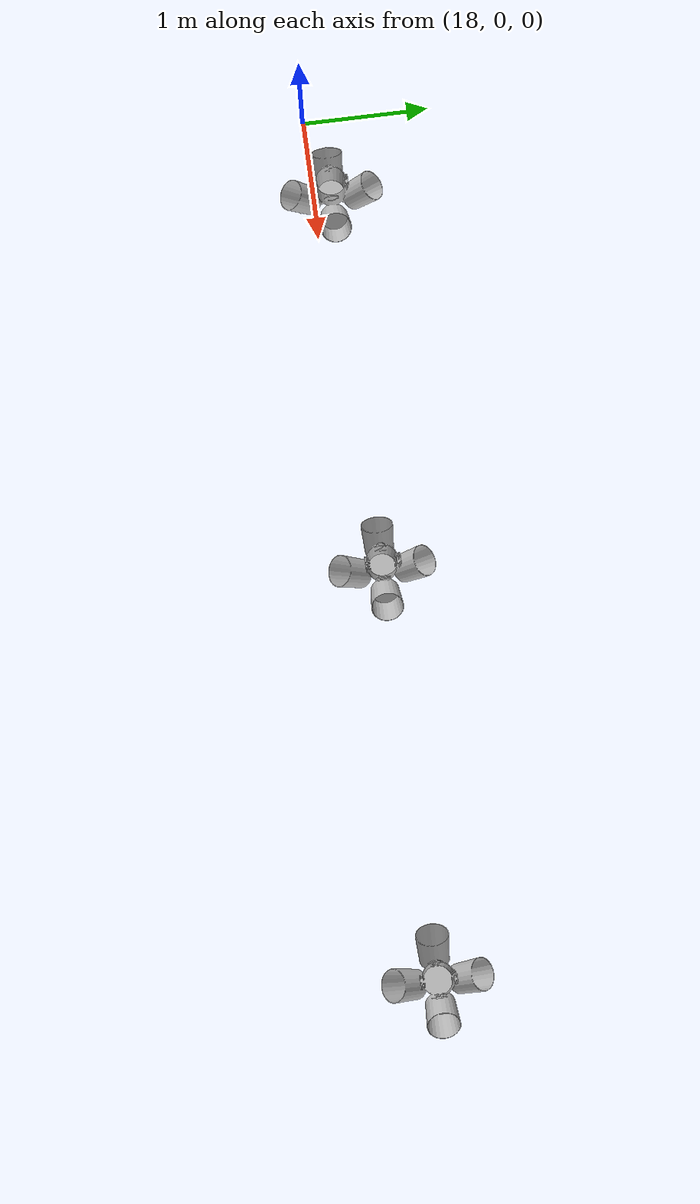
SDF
<?xml version="1.0" ?>
<sdf version="1.10">
  <model name="openlanes_10ft">
    <static>true</static>
    <link name="link">
      <visual name="visual">
        <geometry>
          <mesh>
            <uri>model://openlanes_10ft/meshes/OpenLanes-10ft-WithVehicle-v2020B.obj</uri>
            <scale>0.01 0.01 0.01</scale>
          </mesh>
        </geometry>
      </visual>
    </link>
  </model>
</sdf>
